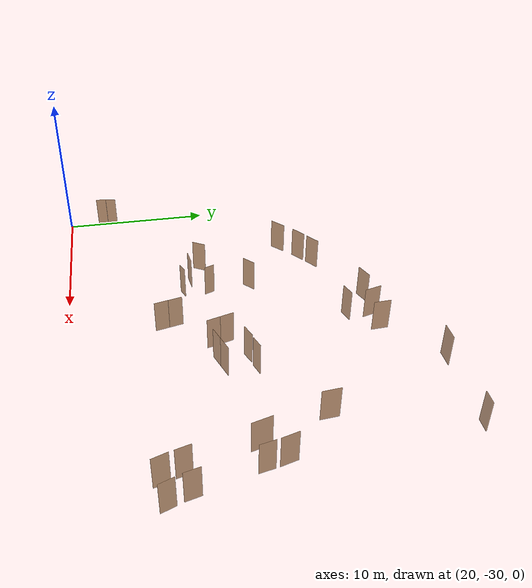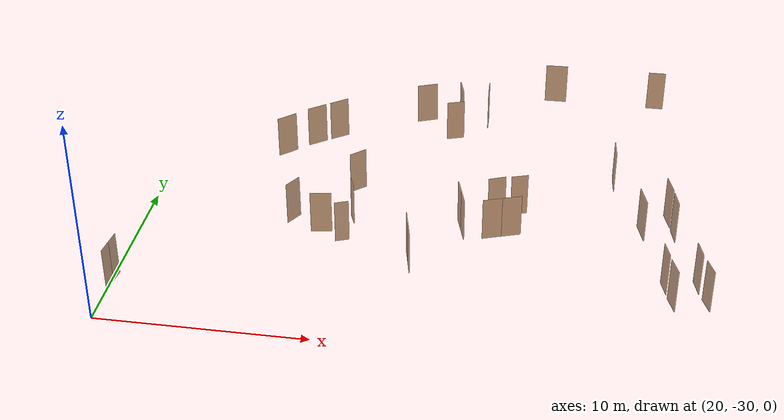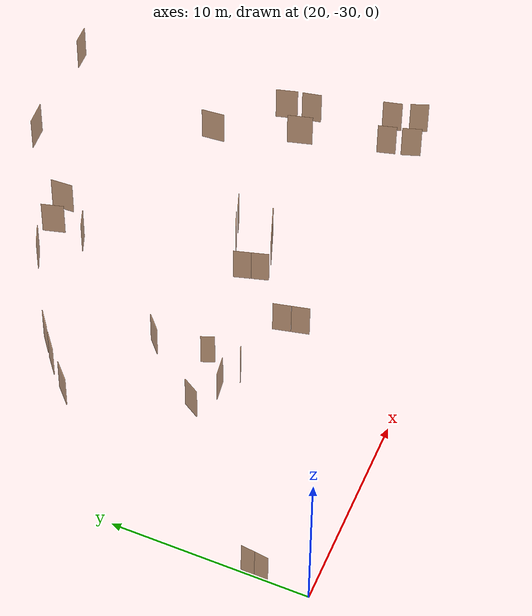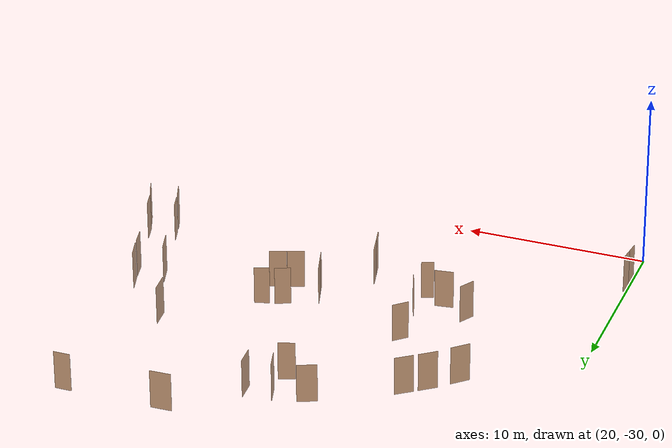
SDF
<sdf version="1.7">
 <world name="world">
  <model name="D12">
   <pose>47.2222 -24.83 0 0 -0 -1.20677</pose>
   <link name="right">
    <pose>0 0 1.11 0 -0 0</pose>
    <visual name="right_visual">
     <geometry><box><size>0.929981 0.03 2.2</size></box></geometry>
     <material><ambient>0.5 0.25 0 0.6</ambient><diffuse>0.5 0.25 0 0.6</diffuse></material>
    </visual>
    <collision name="right_collision">
     <geometry><box><size>0.929981 0.03 2.2</size></box></geometry>
     <surface><contact><collide_bitmask>2</collide_bitmask></contact></surface>
    </collision>
    <inertial>
     <mass>50</mass>
     <inertia><ixx>20.1704</ixx><iyy>23.7703</iyy><izz>3.60736</izz><ixy>0</ixy><ixz>0</ixz><iyz>0</iyz></inertia>
    </inertial>
   </link>
   <joint name="right_joint" type="revolute">
    <parent>world</parent>
    <child>right</child>
    <axis>
     <xyz>0 0 1</xyz>
     <limit><lower>0</lower><upper>1.57</upper></limit>
     <dynamics><spring_reference>0</spring_reference><spring_stiffness>0</spring_stiffness></dynamics>
    </axis>
    <pose>0.469991 0 0 0 -0 0</pose>
   </joint>
   <plugin name="door_D12" filename="libdoor.so">
    <v_max_door>0.5</v_max_door>
    <a_max_door>0.3</a_max_door>
    <a_nom_door>0.15</a_nom_door>
    <dx_min_door>0.01</dx_min_door>
    <f_max_door>500.0</f_max_door>
    <door name="D12" type="SwingDoor" left_joint_name="empty_joint" right_joint_name="right_joint"/>
   </plugin>
  </model>
  <model name="D13">
   <pose>46.7861 -23.541 -0 0 0 -1.31886</pose>
   <link name="right">
    <pose>0 0 1.11 0 -0 0</pose>
    <visual name="right_visual">
     <geometry><box><size>0.981892 0.03 2.2</size></box></geometry>
     <material><ambient>0.5 0.25 0 0.6</ambient><diffuse>0.5 0.25 0 0.6</diffuse></material>
    </visual>
    <collision name="right_collision">
     <geometry><box><size>0.981892 0.03 2.2</size></box></geometry>
     <surface><contact><collide_bitmask>2</collide_bitmask></contact></surface>
    </collision>
    <inertial>
     <mass>50</mass>
     <inertia><ixx>20.1704</ixx><iyy>24.1838</iyy><izz>4.02088</izz><ixy>0</ixy><ixz>0</ixz><iyz>0</iyz></inertia>
    </inertial>
   </link>
   <joint name="right_joint" type="revolute">
    <parent>world</parent>
    <child>right</child>
    <axis>
     <xyz>0 0 -1</xyz>
     <limit><lower>0</lower><upper>1.57</upper></limit>
     <dynamics><spring_reference>0</spring_reference><spring_stiffness>0</spring_stiffness></dynamics>
    </axis>
    <pose>0.495946 0 0 0 -0 0</pose>
   </joint>
   <plugin name="door_D13" filename="libdoor.so">
    <v_max_door>0.5</v_max_door>
    <a_max_door>0.3</a_max_door>
    <a_nom_door>0.15</a_nom_door>
    <dx_min_door>0.01</dx_min_door>
    <f_max_door>500.0</f_max_door>
    <door name="D13" type="SwingDoor" left_joint_name="empty_joint" right_joint_name="right_joint"/>
   </plugin>
  </model>
  <model name="D14">
   <pose>45.7058 -19.5679 0 0 0 -1.3544</pose>
   <link name="right">
    <pose>0 0 1.11 0 -0 0</pose>
    <visual name="right_visual">
     <geometry><box><size>0.986867 0.03 2.2</size></box></geometry>
     <material><ambient>0.5 0.25 0 0.6</ambient><diffuse>0.5 0.25 0 0.6</diffuse></material>
    </visual>
    <collision name="right_collision">
     <geometry><box><size>0.986867 0.03 2.2</size></box></geometry>
     <surface><contact><collide_bitmask>2</collide_bitmask></contact></surface>
    </collision>
    <inertial>
     <mass>50</mass>
     <inertia><ixx>20.1704</ixx><iyy>24.2246</iyy><izz>4.0617</izz><ixy>0</ixy><ixz>0</ixz><iyz>0</iyz></inertia>
    </inertial>
   </link>
   <joint name="right_joint" type="revolute">
    <parent>world</parent>
    <child>right</child>
    <axis>
     <xyz>0 0 1</xyz>
     <limit><lower>0</lower><upper>1.57</upper></limit>
     <dynamics><spring_reference>0</spring_reference><spring_stiffness>0</spring_stiffness></dynamics>
    </axis>
    <pose>0.498434 0 0 0 -0 0</pose>
   </joint>
   <plugin name="door_D14" filename="libdoor.so">
    <v_max_door>0.5</v_max_door>
    <a_max_door>0.3</a_max_door>
    <a_nom_door>0.15</a_nom_door>
    <dx_min_door>0.01</dx_min_door>
    <f_max_door>500.0</f_max_door>
    <door name="D14" type="SwingDoor" left_joint_name="empty_joint" right_joint_name="right_joint"/>
   </plugin>
  </model>
  <model name="D15">
   <pose>45.4079 -18.3231 0 0 -0 -1.29664</pose>
   <link name="right">
    <pose>0 0 1.11 0 -0 0</pose>
    <visual name="right_visual">
     <geometry><box><size>1.10514 0.03 2.2</size></box></geometry>
     <material><ambient>0.5 0.25 0 0.6</ambient><diffuse>0.5 0.25 0 0.6</diffuse></material>
    </visual>
    <collision name="right_collision">
     <geometry><box><size>1.10514 0.03 2.2</size></box></geometry>
     <surface><contact><collide_bitmask>2</collide_bitmask></contact></surface>
    </collision>
    <inertial>
     <mass>50</mass>
     <inertia><ixx>20.1704</ixx><iyy>25.2556</iyy><izz>5.09265</izz><ixy>0</ixy><ixz>0</ixz><iyz>0</iyz></inertia>
    </inertial>
   </link>
   <joint name="right_joint" type="revolute">
    <parent>world</parent>
    <child>right</child>
    <axis>
     <xyz>0 0 -1</xyz>
     <limit><lower>0</lower><upper>1.57</upper></limit>
     <dynamics><spring_reference>0</spring_reference><spring_stiffness>0</spring_stiffness></dynamics>
    </axis>
    <pose>0.55757 0 0 0 -0 0</pose>
   </joint>
   <plugin name="door_D15" filename="libdoor.so">
    <v_max_door>0.5</v_max_door>
    <a_max_door>0.3</a_max_door>
    <a_nom_door>0.15</a_nom_door>
    <dx_min_door>0.01</dx_min_door>
    <f_max_door>500.0</f_max_door>
    <door name="D15" type="SwingDoor" left_joint_name="empty_joint" right_joint_name="right_joint"/>
   </plugin>
  </model>
  <model name="D16">
   <pose>42.6679 -15.4188 0 -0 -0 -1.47952</pose>
   <link name="right">
    <pose>0 0 1.11 0 -0 0</pose>
    <visual name="right_visual">
     <geometry><box><size>1.1816 0.03 2.2</size></box></geometry>
     <material><ambient>0.5 0.25 0 0.6</ambient><diffuse>0.5 0.25 0 0.6</diffuse></material>
    </visual>
    <collision name="right_collision">
     <geometry><box><size>1.1816 0.03 2.2</size></box></geometry>
     <surface><contact><collide_bitmask>2</collide_bitmask></contact></surface>
    </collision>
    <inertial>
     <mass>50</mass>
     <inertia><ixx>20.1704</ixx><iyy>25.9841</iyy><izz>5.82114</izz><ixy>0</ixy><ixz>0</ixz><iyz>0</iyz></inertia>
    </inertial>
   </link>
   <joint name="right_joint" type="revolute">
    <parent>world</parent>
    <child>right</child>
    <axis>
     <xyz>0 0 1</xyz>
     <limit><lower>0</lower><upper>1.57</upper></limit>
     <dynamics><spring_reference>0</spring_reference><spring_stiffness>0</spring_stiffness></dynamics>
    </axis>
    <pose>0.595799 0 0 0 -0 0</pose>
   </joint>
   <plugin name="door_D16" filename="libdoor.so">
    <v_max_door>0.5</v_max_door>
    <a_max_door>0.3</a_max_door>
    <a_nom_door>0.15</a_nom_door>
    <dx_min_door>0.01</dx_min_door>
    <f_max_door>500.0</f_max_door>
    <door name="D16" type="SwingDoor" left_joint_name="empty_joint" right_joint_name="right_joint"/>
   </plugin>
  </model>
  <model name="D17">
   <pose>44.1506 -19.5573 -0 0 -0 1.84229</pose>
   <link name="right">
    <pose>0 0 1.11 0 -0 0</pose>
    <visual name="right_visual">
     <geometry><box><size>1.28448 0.03 2.2</size></box></geometry>
     <material><ambient>0.5 0.25 0 0.6</ambient><diffuse>0.5 0.25 0 0.6</diffuse></material>
    </visual>
    <collision name="right_collision">
     <geometry><box><size>1.28448 0.03 2.2</size></box></geometry>
     <surface><contact><collide_bitmask>2</collide_bitmask></contact></surface>
    </collision>
    <inertial>
     <mass>50</mass>
     <inertia><ixx>20.1704</ixx><iyy>27.0412</iyy><izz>6.87827</izz><ixy>0</ixy><ixz>0</ixz><iyz>0</iyz></inertia>
    </inertial>
   </link>
   <joint name="right_joint" type="revolute">
    <parent>world</parent>
    <child>right</child>
    <axis>
     <xyz>0 0 -1</xyz>
     <limit><lower>0</lower><upper>1.57</upper></limit>
     <dynamics><spring_reference>0</spring_reference><spring_stiffness>0</spring_stiffness></dynamics>
    </axis>
    <pose>0.647239 0 0 0 -0 0</pose>
   </joint>
   <plugin name="door_D17" filename="libdoor.so">
    <v_max_door>0.5</v_max_door>
    <a_max_door>0.3</a_max_door>
    <a_nom_door>0.15</a_nom_door>
    <dx_min_door>0.01</dx_min_door>
    <f_max_door>500.0</f_max_door>
    <door name="D17" type="SwingDoor" left_joint_name="empty_joint" right_joint_name="right_joint"/>
   </plugin>
  </model>
  <model name="D18">
   <pose>45.2939 -23.8308 0 0 -0 1.84233</pose>
   <link name="right">
    <pose>0 0 1.11 0 -0 0</pose>
    <visual name="right_visual">
     <geometry><box><size>0.954162 0.03 2.2</size></box></geometry>
     <material><ambient>0.5 0.25 0 0.6</ambient><diffuse>0.5 0.25 0 0.6</diffuse></material>
    </visual>
    <collision name="right_collision">
     <geometry><box><size>0.954162 0.03 2.2</size></box></geometry>
     <surface><contact><collide_bitmask>2</collide_bitmask></contact></surface>
    </collision>
    <inertial>
     <mass>50</mass>
     <inertia><ixx>20.1704</ixx><iyy>23.9601</iyy><izz>3.79719</izz><ixy>0</ixy><ixz>0</ixz><iyz>0</iyz></inertia>
    </inertial>
   </link>
   <joint name="right_joint" type="revolute">
    <parent>world</parent>
    <child>right</child>
    <axis>
     <xyz>0 0 1</xyz>
     <limit><lower>0</lower><upper>1.57</upper></limit>
     <dynamics><spring_reference>0</spring_reference><spring_stiffness>0</spring_stiffness></dynamics>
    </axis>
    <pose>0.482081 0 0 0 -0 0</pose>
   </joint>
   <plugin name="door_D18" filename="libdoor.so">
    <v_max_door>0.5</v_max_door>
    <a_max_door>0.3</a_max_door>
    <a_nom_door>0.15</a_nom_door>
    <dx_min_door>0.01</dx_min_door>
    <f_max_door>500.0</f_max_door>
    <door name="D18" type="SwingDoor" left_joint_name="empty_joint" right_joint_name="right_joint"/>
   </plugin>
  </model>
  <model name="D19">
   <pose>45.6474 -25.0325 0 0 -0 1.90388</pose>
   <link name="right">
    <pose>0 0 1.11 0 -0 0</pose>
    <visual name="right_visual">
     <geometry><box><size>0.992411 0.03 2.2</size></box></geometry>
     <material><ambient>0.5 0.25 0 0.6</ambient><diffuse>0.5 0.25 0 0.6</diffuse></material>
    </visual>
    <collision name="right_collision">
     <geometry><box><size>0.992411 0.03 2.2</size></box></geometry>
     <surface><contact><collide_bitmask>2</collide_bitmask></contact></surface>
    </collision>
    <inertial>
     <mass>50</mass>
     <inertia><ixx>20.1704</ixx><iyy>24.2703</iyy><izz>4.10741</izz><ixy>0</ixy><ixz>0</ixz><iyz>0</iyz></inertia>
    </inertial>
   </link>
   <joint name="right_joint" type="revolute">
    <parent>world</parent>
    <child>right</child>
    <axis>
     <xyz>0 0 -1</xyz>
     <limit><lower>0</lower><upper>1.57</upper></limit>
     <dynamics><spring_reference>0</spring_reference><spring_stiffness>0</spring_stiffness></dynamics>
    </axis>
    <pose>0.501205 0 0 0 -0 0</pose>
   </joint>
   <plugin name="door_D19" filename="libdoor.so">
    <v_max_door>0.5</v_max_door>
    <a_max_door>0.3</a_max_door>
    <a_nom_door>0.15</a_nom_door>
    <dx_min_door>0.01</dx_min_door>
    <f_max_door>500.0</f_max_door>
    <door name="D19" type="SwingDoor" left_joint_name="empty_joint" right_joint_name="right_joint"/>
   </plugin>
  </model>
  <model name="D25">
   <pose>32.3765 -10.4329 0 0 0 -2.75199</pose>
   <link name="right">
    <pose>0 0 1.11 0 -0 0</pose>
    <visual name="right_visual">
     <geometry><box><size>1.08305 0.03 2.2</size></box></geometry>
     <material><ambient>0.5 0.25 0 0.6</ambient><diffuse>0.5 0.25 0 0.6</diffuse></material>
    </visual>
    <collision name="right_collision">
     <geometry><box><size>1.08305 0.03 2.2</size></box></geometry>
     <surface><contact><collide_bitmask>2</collide_bitmask></contact></surface>
    </collision>
    <inertial>
     <mass>50</mass>
     <inertia><ixx>20.1704</ixx><iyy>25.0542</iyy><izz>4.89127</izz><ixy>0</ixy><ixz>0</ixz><iyz>0</iyz></inertia>
    </inertial>
   </link>
   <joint name="right_joint" type="revolute">
    <parent>world</parent>
    <child>right</child>
    <axis>
     <xyz>0 0 -1</xyz>
     <limit><lower>0</lower><upper>1.57</upper></limit>
     <dynamics><spring_reference>0</spring_reference><spring_stiffness>0</spring_stiffness></dynamics>
    </axis>
    <pose>0.546527 0 0 0 -0 0</pose>
   </joint>
   <plugin name="door_D25" filename="libdoor.so">
    <v_max_door>0.5</v_max_door>
    <a_max_door>0.3</a_max_door>
    <a_nom_door>0.15</a_nom_door>
    <dx_min_door>0.01</dx_min_door>
    <f_max_door>500.0</f_max_door>
    <door name="D25" type="SwingDoor" left_joint_name="empty_joint" right_joint_name="right_joint"/>
   </plugin>
  </model>
  <model name="D26">
   <pose>34.1187 -12.0597 0 0 0 -2.80194</pose>
   <link name="right">
    <pose>0 0 1.11 0 -0 0</pose>
    <visual name="right_visual">
     <geometry><box><size>0.915237 0.03 2.2</size></box></geometry>
     <material><ambient>0.5 0.25 0 0.6</ambient><diffuse>0.5 0.25 0 0.6</diffuse></material>
    </visual>
    <collision name="right_collision">
     <geometry><box><size>0.915237 0.03 2.2</size></box></geometry>
     <surface><contact><collide_bitmask>2</collide_bitmask></contact></surface>
    </collision>
    <inertial>
     <mass>50</mass>
     <inertia><ixx>20.1704</ixx><iyy>23.6569</iyy><izz>3.49399</izz><ixy>0</ixy><ixz>0</ixz><iyz>0</iyz></inertia>
    </inertial>
   </link>
   <joint name="right_joint" type="revolute">
    <parent>world</parent>
    <child>right</child>
    <axis>
     <xyz>0 0 1</xyz>
     <limit><lower>0</lower><upper>1.57</upper></limit>
     <dynamics><spring_reference>0</spring_reference><spring_stiffness>0</spring_stiffness></dynamics>
    </axis>
    <pose>0.462618 0 0 0 -0 0</pose>
   </joint>
   <plugin name="door_D26" filename="libdoor.so">
    <v_max_door>0.5</v_max_door>
    <a_max_door>0.3</a_max_door>
    <a_nom_door>0.15</a_nom_door>
    <dx_min_door>0.01</dx_min_door>
    <f_max_door>500.0</f_max_door>
    <door name="D26" type="SwingDoor" left_joint_name="empty_joint" right_joint_name="right_joint"/>
   </plugin>
  </model>
  <model name="D27">
   <pose>34.2491 -10.3948 0 0 -0 1.83761</pose>
   <link name="right">
    <pose>0 0 1.11 0 -0 0</pose>
    <visual name="right_visual">
     <geometry><box><size>1.1359 0.03 2.2</size></box></geometry>
     <material><ambient>0.5 0.25 0 0.6</ambient><diffuse>0.5 0.25 0 0.6</diffuse></material>
    </visual>
    <collision name="right_collision">
     <geometry><box><size>1.1359 0.03 2.2</size></box></geometry>
     <surface><contact><collide_bitmask>2</collide_bitmask></contact></surface>
    </collision>
    <inertial>
     <mass>50</mass>
     <inertia><ixx>20.1704</ixx><iyy>25.5428</iyy><izz>5.37987</izz><ixy>0</ixy><ixz>0</ixz><iyz>0</iyz></inertia>
    </inertial>
   </link>
   <joint name="right_joint" type="revolute">
    <parent>world</parent>
    <child>right</child>
    <axis>
     <xyz>0 0 1</xyz>
     <limit><lower>0</lower><upper>1.57</upper></limit>
     <dynamics><spring_reference>0</spring_reference><spring_stiffness>0</spring_stiffness></dynamics>
    </axis>
    <pose>0.57295 0 0 0 -0 0</pose>
   </joint>
   <plugin name="door_D27" filename="libdoor.so">
    <v_max_door>0.5</v_max_door>
    <a_max_door>0.3</a_max_door>
    <a_nom_door>0.15</a_nom_door>
    <dx_min_door>0.01</dx_min_door>
    <f_max_door>500.0</f_max_door>
    <door name="D27" type="SwingDoor" left_joint_name="empty_joint" right_joint_name="right_joint"/>
   </plugin>
  </model>
  <model name="D28">
   <pose>35.6845 -10.236 0 0 -0 1.62689</pose>
   <link name="right">
    <pose>0 0 1.11 0 -0 0</pose>
    <visual name="right_visual">
     <geometry><box><size>1.11833 0.03 2.2</size></box></geometry>
     <material><ambient>0.5 0.25 0 0.6</ambient><diffuse>0.5 0.25 0 0.6</diffuse></material>
    </visual>
    <collision name="right_collision">
     <geometry><box><size>1.11833 0.03 2.2</size></box></geometry>
     <surface><contact><collide_bitmask>2</collide_bitmask></contact></surface>
    </collision>
    <inertial>
     <mass>50</mass>
     <inertia><ixx>20.1704</ixx><iyy>25.3777</iyy><izz>5.21482</izz><ixy>0</ixy><ixz>0</ixz><iyz>0</iyz></inertia>
    </inertial>
   </link>
   <joint name="right_joint" type="revolute">
    <parent>world</parent>
    <child>right</child>
    <axis>
     <xyz>0 0 1</xyz>
     <limit><lower>0</lower><upper>1.57</upper></limit>
     <dynamics><spring_reference>0</spring_reference><spring_stiffness>0</spring_stiffness></dynamics>
    </axis>
    <pose>0.564164 0 0 0 -0 0</pose>
   </joint>
   <plugin name="door_D28" filename="libdoor.so">
    <v_max_door>0.5</v_max_door>
    <a_max_door>0.3</a_max_door>
    <a_nom_door>0.15</a_nom_door>
    <dx_min_door>0.01</dx_min_door>
    <f_max_door>500.0</f_max_door>
    <door name="D28" type="SwingDoor" left_joint_name="empty_joint" right_joint_name="right_joint"/>
   </plugin>
  </model>
  <model name="D29">
   <pose>39.1322 -7.20514 0 0 -0 -3.11811</pose>
   <link name="right">
    <pose>0 0 1.11 0 -0 0</pose>
    <visual name="right_visual">
     <geometry><box><size>1.16347 0.03 2.2</size></box></geometry>
     <material><ambient>0.5 0.25 0 0.6</ambient><diffuse>0.5 0.25 0 0.6</diffuse></material>
    </visual>
    <collision name="right_collision">
     <geometry><box><size>1.16347 0.03 2.2</size></box></geometry>
     <surface><contact><collide_bitmask>2</collide_bitmask></contact></surface>
    </collision>
    <inertial>
     <mass>50</mass>
     <inertia><ixx>20.1704</ixx><iyy>25.8069</iyy><izz>5.64402</izz><ixy>0</ixy><ixz>0</ixz><iyz>0</iyz></inertia>
    </inertial>
   </link>
   <joint name="right_joint" type="revolute">
    <parent>world</parent>
    <child>right</child>
    <axis>
     <xyz>0 0 1</xyz>
     <limit><lower>0</lower><upper>1.57</upper></limit>
     <dynamics><spring_reference>0</spring_reference><spring_stiffness>0</spring_stiffness></dynamics>
    </axis>
    <pose>0.586735 0 0 0 -0 0</pose>
   </joint>
   <plugin name="door_D29" filename="libdoor.so">
    <v_max_door>0.5</v_max_door>
    <a_max_door>0.3</a_max_door>
    <a_nom_door>0.15</a_nom_door>
    <dx_min_door>0.01</dx_min_door>
    <f_max_door>500.0</f_max_door>
    <door name="D29" type="SwingDoor" left_joint_name="empty_joint" right_joint_name="right_joint"/>
   </plugin>
  </model>
  <model name="D30">
   <pose>44.6125 -7.19108 0 0 -0 3.14098</pose>
   <link name="right">
    <pose>0 0 1.11 0 -0 0</pose>
    <visual name="right_visual">
     <geometry><box><size>0.913281 0.03 2.2</size></box></geometry>
     <material><ambient>0.5 0.25 0 0.6</ambient><diffuse>0.5 0.25 0 0.6</diffuse></material>
    </visual>
    <collision name="right_collision">
     <geometry><box><size>0.913281 0.03 2.2</size></box></geometry>
     <surface><contact><collide_bitmask>2</collide_bitmask></contact></surface>
    </collision>
    <inertial>
     <mass>50</mass>
     <inertia><ixx>20.1704</ixx><iyy>23.642</iyy><izz>3.47909</izz><ixy>0</ixy><ixz>0</ixz><iyz>0</iyz></inertia>
    </inertial>
   </link>
   <joint name="right_joint" type="revolute">
    <parent>world</parent>
    <child>right</child>
    <axis>
     <xyz>0 0 1</xyz>
     <limit><lower>0</lower><upper>1.57</upper></limit>
     <dynamics><spring_reference>0</spring_reference><spring_stiffness>0</spring_stiffness></dynamics>
    </axis>
    <pose>0.461641 0 0 0 -0 0</pose>
   </joint>
   <plugin name="door_D30" filename="libdoor.so">
    <v_max_door>0.5</v_max_door>
    <a_max_door>0.3</a_max_door>
    <a_nom_door>0.15</a_nom_door>
    <dx_min_door>0.01</dx_min_door>
    <f_max_door>500.0</f_max_door>
    <door name="D30" type="SwingDoor" left_joint_name="empty_joint" right_joint_name="right_joint"/>
   </plugin>
  </model>
  <model name="D31">
   <pose>27.9754 -12.8885 0 -0 -0 -2.50713</pose>
   <link name="right">
    <pose>0 0 1.11 0 -0 0</pose>
    <visual name="right_visual">
     <geometry><box><size>1.03334 0.03 2.2</size></box></geometry>
     <material><ambient>0.5 0.25 0 0.6</ambient><diffuse>0.5 0.25 0 0.6</diffuse></material>
    </visual>
    <collision name="right_collision">
     <geometry><box><size>1.03334 0.03 2.2</size></box></geometry>
     <surface><contact><collide_bitmask>2</collide_bitmask></contact></surface>
    </collision>
    <inertial>
     <mass>50</mass>
     <inertia><ixx>20.1704</ixx><iyy>24.6158</iyy><izz>4.45285</izz><ixy>0</ixy><ixz>0</ixz><iyz>0</iyz></inertia>
    </inertial>
   </link>
   <joint name="right_joint" type="revolute">
    <parent>world</parent>
    <child>right</child>
    <axis>
     <xyz>0 0 -1</xyz>
     <limit><lower>0</lower><upper>1.57</upper></limit>
     <dynamics><spring_reference>0</spring_reference><spring_stiffness>0</spring_stiffness></dynamics>
    </axis>
    <pose>0.521668 0 0 0 -0 0</pose>
   </joint>
   <plugin name="door_D31" filename="libdoor.so">
    <v_max_door>0.5</v_max_door>
    <a_max_door>0.3</a_max_door>
    <a_nom_door>0.15</a_nom_door>
    <dx_min_door>0.01</dx_min_door>
    <f_max_door>500.0</f_max_door>
    <door name="D31" type="SwingDoor" left_joint_name="empty_joint" right_joint_name="right_joint"/>
   </plugin>
  </model>
  <model name="D32">
   <pose>26.9386 -13.6668 0 0 -0 -2.48438</pose>
   <link name="right">
    <pose>0 0 1.11 0 -0 0</pose>
    <visual name="right_visual">
     <geometry><box><size>1.05854 0.03 2.2</size></box></geometry>
     <material><ambient>0.5 0.25 0 0.6</ambient><diffuse>0.5 0.25 0 0.6</diffuse></material>
    </visual>
    <collision name="right_collision">
     <geometry><box><size>1.05854 0.03 2.2</size></box></geometry>
     <surface><contact><collide_bitmask>2</collide_bitmask></contact></surface>
    </collision>
    <inertial>
     <mass>50</mass>
     <inertia><ixx>20.1704</ixx><iyy>24.8354</iyy><izz>4.67253</izz><ixy>0</ixy><ixz>0</ixz><iyz>0</iyz></inertia>
    </inertial>
   </link>
   <joint name="right_joint" type="revolute">
    <parent>world</parent>
    <child>right</child>
    <axis>
     <xyz>0 0 1</xyz>
     <limit><lower>0</lower><upper>1.57</upper></limit>
     <dynamics><spring_reference>0</spring_reference><spring_stiffness>0</spring_stiffness></dynamics>
    </axis>
    <pose>0.53427 0 0 0 -0 0</pose>
   </joint>
   <plugin name="door_D32" filename="libdoor.so">
    <v_max_door>0.5</v_max_door>
    <a_max_door>0.3</a_max_door>
    <a_nom_door>0.15</a_nom_door>
    <dx_min_door>0.01</dx_min_door>
    <f_max_door>500.0</f_max_door>
    <door name="D32" type="SwingDoor" left_joint_name="empty_joint" right_joint_name="right_joint"/>
   </plugin>
  </model>
  <model name="D33">
   <pose>25.5963 -14.8888 -0 0 -0 0.750934</pose>
   <link name="right">
    <pose>0 0 1.11 0 -0 0</pose>
    <visual name="right_visual">
     <geometry><box><size>1.09741 0.03 2.2</size></box></geometry>
     <material><ambient>0.5 0.25 0 0.6</ambient><diffuse>0.5 0.25 0 0.6</diffuse></material>
    </visual>
    <collision name="right_collision">
     <geometry><box><size>1.09741 0.03 2.2</size></box></geometry>
     <surface><contact><collide_bitmask>2</collide_bitmask></contact></surface>
    </collision>
    <inertial>
     <mass>50</mass>
     <inertia><ixx>20.1704</ixx><iyy>25.1846</iyy><izz>5.02167</izz><ixy>0</ixy><ixz>0</ixz><iyz>0</iyz></inertia>
    </inertial>
   </link>
   <joint name="right_joint" type="revolute">
    <parent>world</parent>
    <child>right</child>
    <axis>
     <xyz>0 0 1</xyz>
     <limit><lower>0</lower><upper>1.57</upper></limit>
     <dynamics><spring_reference>0</spring_reference><spring_stiffness>0</spring_stiffness></dynamics>
    </axis>
    <pose>0.553703 0 0 0 -0 0</pose>
   </joint>
   <plugin name="door_D33" filename="libdoor.so">
    <v_max_door>0.5</v_max_door>
    <a_max_door>0.3</a_max_door>
    <a_nom_door>0.15</a_nom_door>
    <dx_min_door>0.01</dx_min_door>
    <f_max_door>500.0</f_max_door>
    <door name="D33" type="SwingDoor" left_joint_name="empty_joint" right_joint_name="right_joint"/>
   </plugin>
  </model>
  <model name="D34">
   <pose>29.9039 -17.792 0 0 0 -2.39809</pose>
   <link name="right">
    <pose>0 0 1.11 0 -0 0</pose>
    <visual name="right_visual">
     <geometry><box><size>0.925938 0.03 2.2</size></box></geometry>
     <material><ambient>0.5 0.25 0 0.6</ambient><diffuse>0.5 0.25 0 0.6</diffuse></material>
    </visual>
    <collision name="right_collision">
     <geometry><box><size>0.925938 0.03 2.2</size></box></geometry>
     <surface><contact><collide_bitmask>2</collide_bitmask></contact></surface>
    </collision>
    <inertial>
     <mass>50</mass>
     <inertia><ixx>20.1704</ixx><iyy>23.739</iyy><izz>3.57609</izz><ixy>0</ixy><ixz>0</ixz><iyz>0</iyz></inertia>
    </inertial>
   </link>
   <joint name="right_joint" type="revolute">
    <parent>world</parent>
    <child>right</child>
    <axis>
     <xyz>0 0 1</xyz>
     <limit><lower>0</lower><upper>1.57</upper></limit>
     <dynamics><spring_reference>0</spring_reference><spring_stiffness>0</spring_stiffness></dynamics>
    </axis>
    <pose>0.467969 0 0 0 -0 0</pose>
   </joint>
   <plugin name="door_D34" filename="libdoor.so">
    <v_max_door>0.5</v_max_door>
    <a_max_door>0.3</a_max_door>
    <a_nom_door>0.15</a_nom_door>
    <dx_min_door>0.01</dx_min_door>
    <f_max_door>500.0</f_max_door>
    <door name="D34" type="SwingDoor" left_joint_name="empty_joint" right_joint_name="right_joint"/>
   </plugin>
  </model>
  <model name="D35">
   <pose>27.2522 -20.905 0 -0 -0 -2.0991</pose>
   <link name="right">
    <pose>0 0 1.11 0 -0 0</pose>
    <visual name="right_visual">
     <geometry><box><size>0.926974 0.03 2.2</size></box></geometry>
     <material><ambient>0.5 0.25 0 0.6</ambient><diffuse>0.5 0.25 0 0.6</diffuse></material>
    </visual>
    <collision name="right_collision">
     <geometry><box><size>0.926974 0.03 2.2</size></box></geometry>
     <surface><contact><collide_bitmask>2</collide_bitmask></contact></surface>
    </collision>
    <inertial>
     <mass>50</mass>
     <inertia><ixx>20.1704</ixx><iyy>23.747</iyy><izz>3.58409</izz><ixy>0</ixy><ixz>0</ixz><iyz>0</iyz></inertia>
    </inertial>
   </link>
   <joint name="right_joint" type="revolute">
    <parent>world</parent>
    <child>right</child>
    <axis>
     <xyz>0 0 1</xyz>
     <limit><lower>0</lower><upper>1.57</upper></limit>
     <dynamics><spring_reference>0</spring_reference><spring_stiffness>0</spring_stiffness></dynamics>
    </axis>
    <pose>0.468487 0 0 0 -0 0</pose>
   </joint>
   <plugin name="door_D35" filename="libdoor.so">
    <v_max_door>0.5</v_max_door>
    <a_max_door>0.3</a_max_door>
    <a_nom_door>0.15</a_nom_door>
    <dx_min_door>0.01</dx_min_door>
    <f_max_door>500.0</f_max_door>
    <door name="D35" type="SwingDoor" left_joint_name="empty_joint" right_joint_name="right_joint"/>
   </plugin>
  </model>
  <model name="D36">
   <pose>30.1255 -20.5368 0 0 0 -1.19026</pose>
   <link name="right">
    <pose>0 0 1.11 0 -0 0</pose>
    <visual name="right_visual">
     <geometry><box><size>0.694175 0.03 2.2</size></box></geometry>
     <material><ambient>0.5 0.25 0 0.6</ambient><diffuse>0.5 0.25 0 0.6</diffuse></material>
    </visual>
    <collision name="right_collision">
     <geometry><box><size>0.694175 0.03 2.2</size></box></geometry>
     <surface><contact><collide_bitmask>2</collide_bitmask></contact></surface>
    </collision>
    <inertial>
     <mass>50</mass>
     <inertia><ixx>20.1704</ixx><iyy>22.1745</iyy><izz>2.01158</izz><ixy>0</ixy><ixz>0</ixz><iyz>0</iyz></inertia>
    </inertial>
   </link>
   <joint name="right_joint" type="revolute">
    <parent>world</parent>
    <child>right</child>
    <axis>
     <xyz>0 0 -1</xyz>
     <limit><lower>0</lower><upper>1.57</upper></limit>
     <dynamics><spring_reference>0</spring_reference><spring_stiffness>0</spring_stiffness></dynamics>
    </axis>
    <pose>0.352087 0 0 0 -0 0</pose>
   </joint>
   <plugin name="door_D36" filename="libdoor.so">
    <v_max_door>0.5</v_max_door>
    <a_max_door>0.3</a_max_door>
    <a_nom_door>0.15</a_nom_door>
    <dx_min_door>0.01</dx_min_door>
    <f_max_door>500.0</f_max_door>
    <door name="D36" type="SwingDoor" left_joint_name="empty_joint" right_joint_name="right_joint"/>
   </plugin>
  </model>
  <model name="D37">
   <pose>28.8017 -21.7376 0 0 -0 0.134395</pose>
   <link name="right">
    <pose>0 0 1.11 0 -0 0</pose>
    <visual name="right_visual">
     <geometry><box><size>1.02647 0.03 2.2</size></box></geometry>
     <material><ambient>0.5 0.25 0 0.6</ambient><diffuse>0.5 0.25 0 0.6</diffuse></material>
    </visual>
    <collision name="right_collision">
     <geometry><box><size>1.02647 0.03 2.2</size></box></geometry>
     <surface><contact><collide_bitmask>2</collide_bitmask></contact></surface>
    </collision>
    <inertial>
     <mass>50</mass>
     <inertia><ixx>20.1704</ixx><iyy>24.5569</iyy><izz>4.39395</izz><ixy>0</ixy><ixz>0</ixz><iyz>0</iyz></inertia>
    </inertial>
   </link>
   <joint name="right_joint" type="revolute">
    <parent>world</parent>
    <child>right</child>
    <axis>
     <xyz>0 0 -1</xyz>
     <limit><lower>0</lower><upper>1.57</upper></limit>
     <dynamics><spring_reference>0</spring_reference><spring_stiffness>0</spring_stiffness></dynamics>
    </axis>
    <pose>0.518237 0 0 0 -0 0</pose>
   </joint>
   <plugin name="door_D37" filename="libdoor.so">
    <v_max_door>0.5</v_max_door>
    <a_max_door>0.3</a_max_door>
    <a_nom_door>0.15</a_nom_door>
    <dx_min_door>0.01</dx_min_door>
    <f_max_door>500.0</f_max_door>
    <door name="D37" type="SwingDoor" left_joint_name="empty_joint" right_joint_name="right_joint"/>
   </plugin>
  </model>
  <model name="D38">
   <pose>29.9445 -22.3332 0 0 0 -2.76978</pose>
   <link name="right">
    <pose>0 0 1.11 0 -0 0</pose>
    <visual name="right_visual">
     <geometry><box><size>0.684938 0.03 2.2</size></box></geometry>
     <material><ambient>0.5 0.25 0 0.6</ambient><diffuse>0.5 0.25 0 0.6</diffuse></material>
    </visual>
    <collision name="right_collision">
     <geometry><box><size>0.684938 0.03 2.2</size></box></geometry>
     <surface><contact><collide_bitmask>2</collide_bitmask></contact></surface>
    </collision>
    <inertial>
     <mass>50</mass>
     <inertia><ixx>20.1704</ixx><iyy>22.1214</iyy><izz>1.9585</izz><ixy>0</ixy><ixz>0</ixz><iyz>0</iyz></inertia>
    </inertial>
   </link>
   <joint name="right_joint" type="revolute">
    <parent>world</parent>
    <child>right</child>
    <axis>
     <xyz>0 0 1</xyz>
     <limit><lower>0</lower><upper>1.57</upper></limit>
     <dynamics><spring_reference>0</spring_reference><spring_stiffness>0</spring_stiffness></dynamics>
    </axis>
    <pose>0.347469 0 0 0 -0 0</pose>
   </joint>
   <plugin name="door_D38" filename="libdoor.so">
    <v_max_door>0.5</v_max_door>
    <a_max_door>0.3</a_max_door>
    <a_nom_door>0.15</a_nom_door>
    <dx_min_door>0.01</dx_min_door>
    <f_max_door>500.0</f_max_door>
    <door name="D38" type="SwingDoor" left_joint_name="empty_joint" right_joint_name="right_joint"/>
   </plugin>
  </model>
  <model name="D39">
   <pose>37.0629 -19.0735 0 -0 -0 -2.74755</pose>
   <link name="right">
    <pose>0 0 1.11 0 -0 0</pose>
    <visual name="right_visual">
     <geometry><box><size>0.87941 0.03 2.2</size></box></geometry>
     <material><ambient>0.5 0.25 0 0.6</ambient><diffuse>0.5 0.25 0 0.6</diffuse></material>
    </visual>
    <collision name="right_collision">
     <geometry><box><size>0.87941 0.03 2.2</size></box></geometry>
     <surface><contact><collide_bitmask>2</collide_bitmask></contact></surface>
    </collision>
    <inertial>
     <mass>50</mass>
     <inertia><ixx>20.1704</ixx><iyy>23.389</iyy><izz>3.22609</izz><ixy>0</ixy><ixz>0</ixz><iyz>0</iyz></inertia>
    </inertial>
   </link>
   <joint name="right_joint" type="revolute">
    <parent>world</parent>
    <child>right</child>
    <axis>
     <xyz>0 0 1</xyz>
     <limit><lower>0</lower><upper>1.57</upper></limit>
     <dynamics><spring_reference>0</spring_reference><spring_stiffness>0</spring_stiffness></dynamics>
    </axis>
    <pose>0.444705 0 0 0 -0 0</pose>
   </joint>
   <plugin name="door_D39" filename="libdoor.so">
    <v_max_door>0.5</v_max_door>
    <a_max_door>0.3</a_max_door>
    <a_nom_door>0.15</a_nom_door>
    <dx_min_door>0.01</dx_min_door>
    <f_max_door>500.0</f_max_door>
    <door name="D39" type="SwingDoor" left_joint_name="empty_joint" right_joint_name="right_joint"/>
   </plugin>
  </model>
  <model name="D40">
   <pose>38.135 -18.7389 0 0 -0 0.340493</pose>
   <link name="right">
    <pose>0 0 1.11 0 -0 0</pose>
    <visual name="right_visual">
     <geometry><box><size>0.833605 0.03 2.2</size></box></geometry>
     <material><ambient>0.5 0.25 0 0.6</ambient><diffuse>0.5 0.25 0 0.6</diffuse></material>
    </visual>
    <collision name="right_collision">
     <geometry><box><size>0.833605 0.03 2.2</size></box></geometry>
     <surface><contact><collide_bitmask>2</collide_bitmask></contact></surface>
    </collision>
    <inertial>
     <mass>50</mass>
     <inertia><ixx>20.1704</ixx><iyy>23.0621</iyy><izz>2.89915</izz><ixy>0</ixy><ixz>0</ixz><iyz>0</iyz></inertia>
    </inertial>
   </link>
   <joint name="right_joint" type="revolute">
    <parent>world</parent>
    <child>right</child>
    <axis>
     <xyz>0 0 1</xyz>
     <limit><lower>0</lower><upper>1.57</upper></limit>
     <dynamics><spring_reference>0</spring_reference><spring_stiffness>0</spring_stiffness></dynamics>
    </axis>
    <pose>0.421802 0 0 0 -0 0</pose>
   </joint>
   <plugin name="door_D40" filename="libdoor.so">
    <v_max_door>0.5</v_max_door>
    <a_max_door>0.3</a_max_door>
    <a_nom_door>0.15</a_nom_door>
    <dx_min_door>0.01</dx_min_door>
    <f_max_door>500.0</f_max_door>
    <door name="D40" type="SwingDoor" left_joint_name="empty_joint" right_joint_name="right_joint"/>
   </plugin>
  </model>
  <model name="DH4">
   <pose>33.3402 -23.5658 0 0 -0 1.79804</pose>
   <link name="right">
    <pose>0.460935 0 1.11 0 -0 0</pose>
    <visual name="right_visual">
     <geometry><box><size>0.911871 0.03 2.2</size></box></geometry>
     <material><ambient>0.5 0.25 0 0.6</ambient><diffuse>0.5 0.25 0 0.6</diffuse></material>
    </visual>
    <collision name="right_collision">
     <geometry><box><size>0.911871 0.03 2.2</size></box></geometry>
     <surface><contact><collide_bitmask>2</collide_bitmask></contact></surface>
    </collision>
    <inertial>
     <mass>50</mass>
     <inertia><ixx>20.1704</ixx><iyy>23.6313</iyy><izz>3.46837</izz><ixy>0</ixy><ixz>0</ixz><iyz>0</iyz></inertia>
    </inertial>
   </link>
   <joint name="right_joint" type="revolute">
    <parent>world</parent>
    <child>right</child>
    <axis>
     <xyz>0 0 -1</xyz>
     <limit><lower>0</lower><upper>1.57</upper></limit>
     <dynamics><spring_reference>0</spring_reference><spring_stiffness>0</spring_stiffness></dynamics>
    </axis>
    <pose>0.460935 0 0 0 -0 0</pose>
   </joint>
   <link name="left">
    <pose>-0.460935 0 1.11 0 -0 0</pose>
    <visual name="left_visual">
     <geometry><box><size>0.911871 0.03 2.2</size></box></geometry>
     <material><ambient>0.5 0.25 0 0.6</ambient><diffuse>0.5 0.25 0 0.6</diffuse></material>
    </visual>
    <collision name="left_collision">
     <geometry><box><size>0.911871 0.03 2.2</size></box></geometry>
     <surface><contact><collide_bitmask>2</collide_bitmask></contact></surface>
    </collision>
    <inertial>
     <mass>50</mass>
     <inertia><ixx>20.1704</ixx><iyy>23.6313</iyy><izz>3.46837</izz><ixy>0</ixy><ixz>0</ixz><iyz>0</iyz></inertia>
    </inertial>
   </link>
   <joint name="left_joint" type="revolute">
    <parent>world</parent>
    <child>left</child>
    <axis>
     <xyz>0 0 -1</xyz>
     <limit><lower>-1.57</lower><upper>0</upper></limit>
     <dynamics><spring_reference>0</spring_reference><spring_stiffness>0</spring_stiffness></dynamics>
    </axis>
    <pose>-0.460935 0 0 0 -0 0</pose>
   </joint>
   <plugin name="door_DH4" filename="libdoor.so">
    <v_max_door>0.5</v_max_door>
    <a_max_door>0.3</a_max_door>
    <a_nom_door>0.15</a_nom_door>
    <dx_min_door>0.01</dx_min_door>
    <f_max_door>500.0</f_max_door>
    <door name="DH4" type="DoubleSwingDoor" left_joint_name="left_joint" right_joint_name="right_joint"/>
   </plugin>
  </model>
  <model name="DH5">
   <pose>35.4783 -20.5462 0 0 -0 1.854</pose>
   <link name="right">
    <pose>0.44729 0 1.11 0 -0 0</pose>
    <visual name="right_visual">
     <geometry><box><size>0.884581 0.03 2.2</size></box></geometry>
     <material><ambient>0.5 0.25 0 0.6</ambient><diffuse>0.5 0.25 0 0.6</diffuse></material>
    </visual>
    <collision name="right_collision">
     <geometry><box><size>0.884581 0.03 2.2</size></box></geometry>
     <surface><contact><collide_bitmask>2</collide_bitmask></contact></surface>
    </collision>
    <inertial>
     <mass>50</mass>
     <inertia><ixx>20.1704</ixx><iyy>23.427</iyy><izz>3.2641</izz><ixy>0</ixy><ixz>0</ixz><iyz>0</iyz></inertia>
    </inertial>
   </link>
   <joint name="right_joint" type="revolute">
    <parent>world</parent>
    <child>right</child>
    <axis>
     <xyz>0 0 -1</xyz>
     <limit><lower>0</lower><upper>1.57</upper></limit>
     <dynamics><spring_reference>0</spring_reference><spring_stiffness>0</spring_stiffness></dynamics>
    </axis>
    <pose>0.44729 0 0 0 -0 0</pose>
   </joint>
   <link name="left">
    <pose>-0.44729 0 1.11 0 -0 0</pose>
    <visual name="left_visual">
     <geometry><box><size>0.884581 0.03 2.2</size></box></geometry>
     <material><ambient>0.5 0.25 0 0.6</ambient><diffuse>0.5 0.25 0 0.6</diffuse></material>
    </visual>
    <collision name="left_collision">
     <geometry><box><size>0.884581 0.03 2.2</size></box></geometry>
     <surface><contact><collide_bitmask>2</collide_bitmask></contact></surface>
    </collision>
    <inertial>
     <mass>50</mass>
     <inertia><ixx>20.1704</ixx><iyy>23.427</iyy><izz>3.2641</izz><ixy>0</ixy><ixz>0</ixz><iyz>0</iyz></inertia>
    </inertial>
   </link>
   <joint name="left_joint" type="revolute">
    <parent>world</parent>
    <child>left</child>
    <axis>
     <xyz>0 0 -1</xyz>
     <limit><lower>-1.57</lower><upper>0</upper></limit>
     <dynamics><spring_reference>0</spring_reference><spring_stiffness>0</spring_stiffness></dynamics>
    </axis>
    <pose>-0.44729 0 0 0 -0 0</pose>
   </joint>
   <plugin name="door_DH5" filename="libdoor.so">
    <v_max_door>0.5</v_max_door>
    <a_max_door>0.3</a_max_door>
    <a_nom_door>0.15</a_nom_door>
    <dx_min_door>0.01</dx_min_door>
    <f_max_door>500.0</f_max_door>
    <door name="DH5" type="DoubleSwingDoor" left_joint_name="left_joint" right_joint_name="right_joint"/>
   </plugin>
  </model>
  <model name="DH6">
   <pose>37.4887 -20.8187 -0 0 -0 0.345673</pose>
   <link name="right">
    <pose>0.48223 0 1.11 0 -0 0</pose>
    <visual name="right_visual">
     <geometry><box><size>0.954459 0.03 2.2</size></box></geometry>
     <material><ambient>0.5 0.25 0 0.6</ambient><diffuse>0.5 0.25 0 0.6</diffuse></material>
    </visual>
    <collision name="right_collision">
     <geometry><box><size>0.954459 0.03 2.2</size></box></geometry>
     <surface><contact><collide_bitmask>2</collide_bitmask></contact></surface>
    </collision>
    <inertial>
     <mass>50</mass>
     <inertia><ixx>20.1704</ixx><iyy>23.9625</iyy><izz>3.79955</izz><ixy>0</ixy><ixz>0</ixz><iyz>0</iyz></inertia>
    </inertial>
   </link>
   <joint name="right_joint" type="revolute">
    <parent>world</parent>
    <child>right</child>
    <axis>
     <xyz>0 0 -1</xyz>
     <limit><lower>0</lower><upper>1.57</upper></limit>
     <dynamics><spring_reference>0</spring_reference><spring_stiffness>0</spring_stiffness></dynamics>
    </axis>
    <pose>0.48223 0 0 0 -0 0</pose>
   </joint>
   <link name="left">
    <pose>-0.48223 0 1.11 0 -0 0</pose>
    <visual name="left_visual">
     <geometry><box><size>0.954459 0.03 2.2</size></box></geometry>
     <material><ambient>0.5 0.25 0 0.6</ambient><diffuse>0.5 0.25 0 0.6</diffuse></material>
    </visual>
    <collision name="left_collision">
     <geometry><box><size>0.954459 0.03 2.2</size></box></geometry>
     <surface><contact><collide_bitmask>2</collide_bitmask></contact></surface>
    </collision>
    <inertial>
     <mass>50</mass>
     <inertia><ixx>20.1704</ixx><iyy>23.9625</iyy><izz>3.79955</izz><ixy>0</ixy><ixz>0</ixz><iyz>0</iyz></inertia>
    </inertial>
   </link>
   <joint name="left_joint" type="revolute">
    <parent>world</parent>
    <child>left</child>
    <axis>
     <xyz>0 0 -1</xyz>
     <limit><lower>-1.57</lower><upper>0</upper></limit>
     <dynamics><spring_reference>0</spring_reference><spring_stiffness>0</spring_stiffness></dynamics>
    </axis>
    <pose>-0.48223 0 0 0 -0 0</pose>
   </joint>
   <plugin name="door_DH6" filename="libdoor.so">
    <v_max_door>0.5</v_max_door>
    <a_max_door>0.3</a_max_door>
    <a_nom_door>0.15</a_nom_door>
    <dx_min_door>0.01</dx_min_door>
    <f_max_door>500.0</f_max_door>
    <door name="DH6" type="DoubleSwingDoor" left_joint_name="left_joint" right_joint_name="right_joint"/>
   </plugin>
  </model>
  <model name="DH7">
   <pose>20.0813 -27.229 0 0 0 -1.68321</pose>
   <link name="right">
    <pose>0.357271 0 1.11 0 -0 0</pose>
    <visual name="right_visual">
     <geometry><box><size>0.704543 0.03 2.2</size></box></geometry>
     <material><ambient>0.5 0.25 0 0.6</ambient><diffuse>0.5 0.25 0 0.6</diffuse></material>
    </visual>
    <collision name="right_collision">
     <geometry><box><size>0.704543 0.03 2.2</size></box></geometry>
     <surface><contact><collide_bitmask>2</collide_bitmask></contact></surface>
    </collision>
    <inertial>
     <mass>50</mass>
     <inertia><ixx>20.1704</ixx><iyy>22.2349</iyy><izz>2.072</izz><ixy>0</ixy><ixz>0</ixz><iyz>0</iyz></inertia>
    </inertial>
   </link>
   <joint name="right_joint" type="revolute">
    <parent>world</parent>
    <child>right</child>
    <axis>
     <xyz>0 0 -1</xyz>
     <limit><lower>0</lower><upper>1.57</upper></limit>
     <dynamics><spring_reference>0</spring_reference><spring_stiffness>0</spring_stiffness></dynamics>
    </axis>
    <pose>0.357271 0 0 0 -0 0</pose>
   </joint>
   <link name="left">
    <pose>-0.357271 0 1.11 0 -0 0</pose>
    <visual name="left_visual">
     <geometry><box><size>0.704543 0.03 2.2</size></box></geometry>
     <material><ambient>0.5 0.25 0 0.6</ambient><diffuse>0.5 0.25 0 0.6</diffuse></material>
    </visual>
    <collision name="left_collision">
     <geometry><box><size>0.704543 0.03 2.2</size></box></geometry>
     <surface><contact><collide_bitmask>2</collide_bitmask></contact></surface>
    </collision>
    <inertial>
     <mass>50</mass>
     <inertia><ixx>20.1704</ixx><iyy>22.2349</iyy><izz>2.072</izz><ixy>0</ixy><ixz>0</ixz><iyz>0</iyz></inertia>
    </inertial>
   </link>
   <joint name="left_joint" type="revolute">
    <parent>world</parent>
    <child>left</child>
    <axis>
     <xyz>0 0 -1</xyz>
     <limit><lower>-1.57</lower><upper>0</upper></limit>
     <dynamics><spring_reference>0</spring_reference><spring_stiffness>0</spring_stiffness></dynamics>
    </axis>
    <pose>-0.357271 0 0 0 -0 0</pose>
   </joint>
   <plugin name="door_DH7" filename="libdoor.so">
    <v_max_door>0.5</v_max_door>
    <a_max_door>0.3</a_max_door>
    <a_nom_door>0.15</a_nom_door>
    <dx_min_door>0.01</dx_min_door>
    <f_max_door>500.0</f_max_door>
    <door name="DH7" type="DoubleSwingDoor" left_joint_name="left_joint" right_joint_name="right_joint"/>
   </plugin>
  </model>
 </world>
</sdf>
